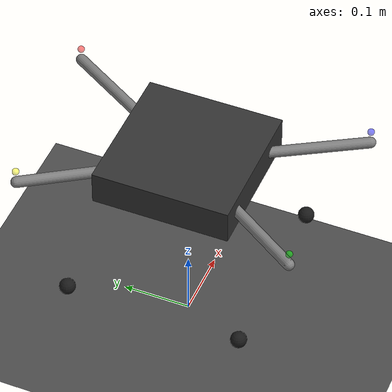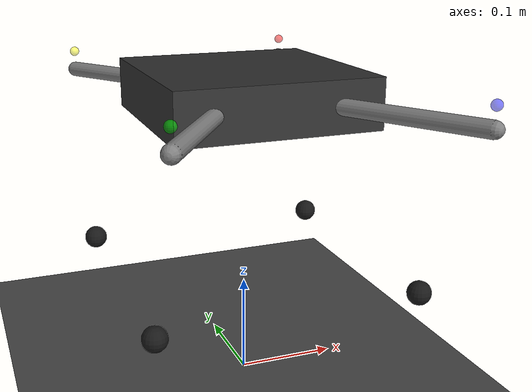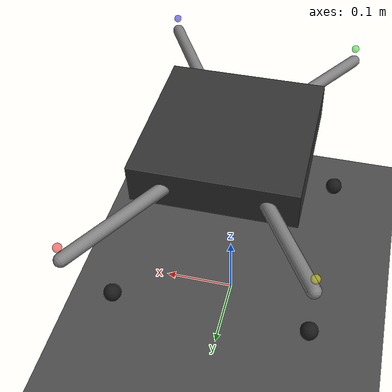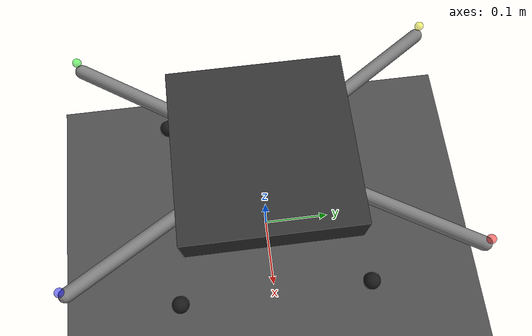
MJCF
<mujoco model="x500">

  <option timestep="0.002" gravity="0 0 -9.81" integrator="RK4"/>

  <default>
    <joint armature="0.001" damping="0.01"/>
    <geom contype="1" conaffinity="1" friction="1.0 0.05 0.01"/>
  </default>

  <asset>
    <texture type="skybox" builtin="gradient" rgb1="0.3 0.5 0.7"
             rgb2="0.7 0.9 1.0" width="256" height="256"/>
    <texture name="ground_tex" type="2d" builtin="checker"
             rgb1="0.2 0.2 0.2" rgb2="0.4 0.4 0.4"
             width="200" height="200"/>
    <material name="ground_mat" texture="ground_tex" texrepeat="40 40"
              reflectance="0.2"/>
  </asset>

  <worldbody>
    <light pos="0 0 5" dir="0 0 -1" castshadow="false"/>
    <geom name="ground" type="plane" size="20 20 0.1"
          material="ground_mat" rgba="0.5 0.5 0.5 1"/>

    <body name="base_link" pos="0 0 0.3">
      <freejoint/>
      <inertial pos="0 0 0" mass="1.5"
                diaginertia="0.029125 0.029125 0.055225"/>

      <!-- visual + collision: rough x500 body box -->
      <geom name="body_box" type="box" size="0.10 0.10 0.025"
            rgba="0.2 0.2 0.2 1"/>
      <geom name="arm_fl" type="capsule" fromto="0 0 0  0.13 0.22 0"
            size="0.008" rgba="0.5 0.5 0.5 1"/>
      <geom name="arm_fr" type="capsule" fromto="0 0 0  0.13 -0.22 0"
            size="0.008" rgba="0.5 0.5 0.5 1"/>
      <geom name="arm_rl" type="capsule" fromto="0 0 0 -0.13 0.20 0"
            size="0.008" rgba="0.5 0.5 0.5 1"/>
      <geom name="arm_rr" type="capsule" fromto="0 0 0 -0.13 -0.20 0"
            size="0.008" rgba="0.5 0.5 0.5 1"/>

      <!-- landing gear feet at z = -0.18 below base_link -->
      <geom name="foot_fl" type="sphere" pos=" 0.13  0.13 -0.18"
            size="0.012" rgba="0.1 0.1 0.1 1"/>
      <geom name="foot_fr" type="sphere" pos=" 0.13 -0.13 -0.18"
            size="0.012" rgba="0.1 0.1 0.1 1"/>
      <geom name="foot_rl" type="sphere" pos="-0.13  0.13 -0.18"
            size="0.012" rgba="0.1 0.1 0.1 1"/>
      <geom name="foot_rr" type="sphere" pos="-0.13 -0.13 -0.18"
            size="0.012" rgba="0.1 0.1 0.1 1"/>

      <!-- rotor sites: where thrust actuators apply force -->
      <site name="rotor0" pos=" 0.13  0.22 0.02" size="0.005"
            rgba="1 0 0 0.5"/>
      <site name="rotor1" pos="-0.13 -0.20 0.02" size="0.005"
            rgba="0 1 0 0.5"/>
      <site name="rotor2" pos=" 0.13 -0.22 0.02" size="0.005"
            rgba="0 0 1 0.5"/>
      <site name="rotor3" pos="-0.13  0.20 0.02" size="0.005"
            rgba="1 1 0 0.5"/>

      <!-- IMU site at body center -->
      <site name="imu_site" pos="0 0 0" size="0.005"/>
    </body>
  </worldbody>

  <actuator>
    <general name="m0" site="rotor0" gear="0 0 8 0 0 0"
             ctrlrange="0 1" dyntype="none"/>
    <general name="m1" site="rotor1" gear="0 0 8 0 0 0"
             ctrlrange="0 1" dyntype="none"/>
    <general name="m2" site="rotor2" gear="0 0 8 0 0 0"
             ctrlrange="0 1" dyntype="none"/>
    <general name="m3" site="rotor3" gear="0 0 8 0 0 0"
             ctrlrange="0 1" dyntype="none"/>
  </actuator>

  <sensor>
    <framequat   name="imu_quat"  objtype="site" objname="imu_site"/>
    <gyro        name="imu_gyro"  site="imu_site"/>
    <accelerometer name="imu_acc" site="imu_site"/>
    <framepos    name="base_pos"  objtype="site" objname="imu_site"/>
    <framelinvel name="base_lvel" objtype="site" objname="imu_site"/>
  </sensor>

</mujoco>
